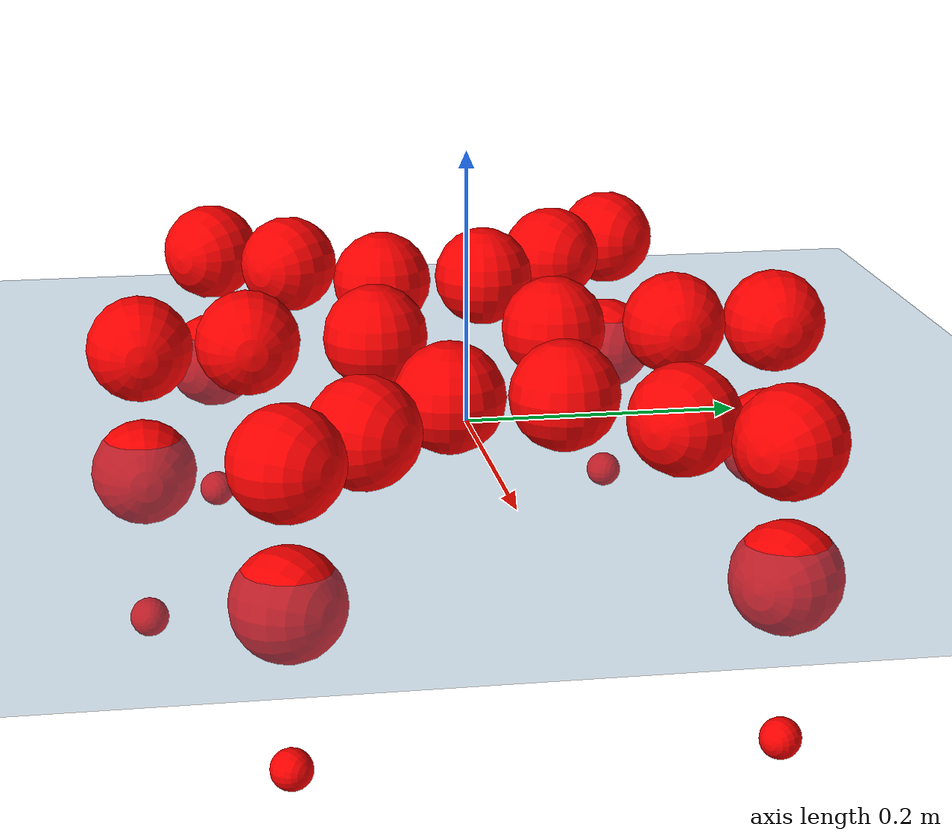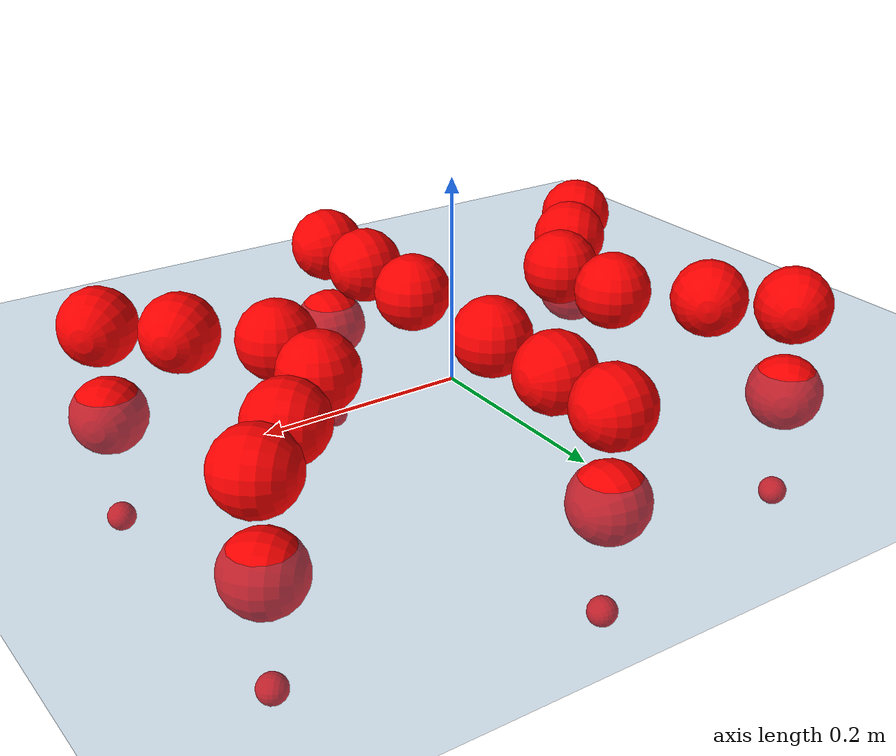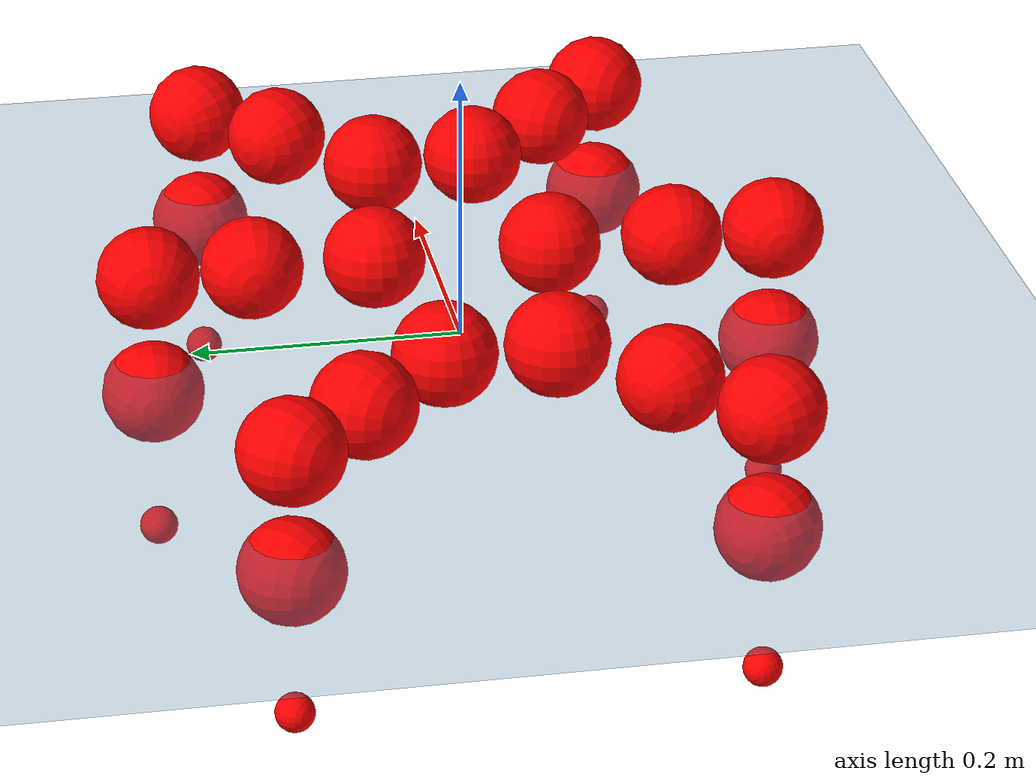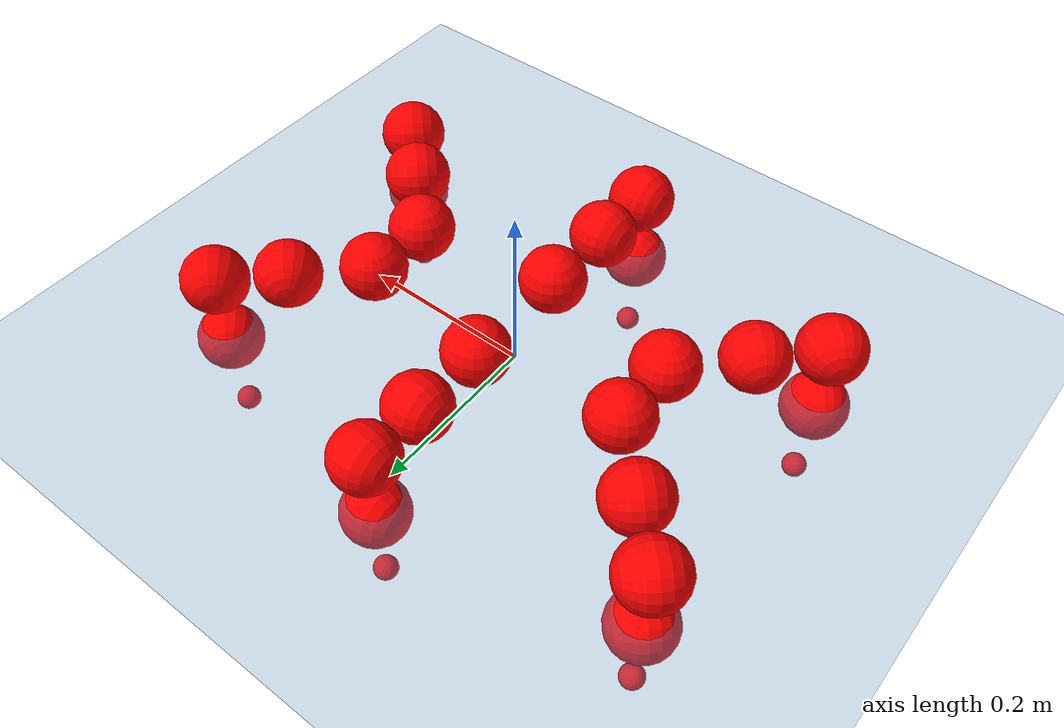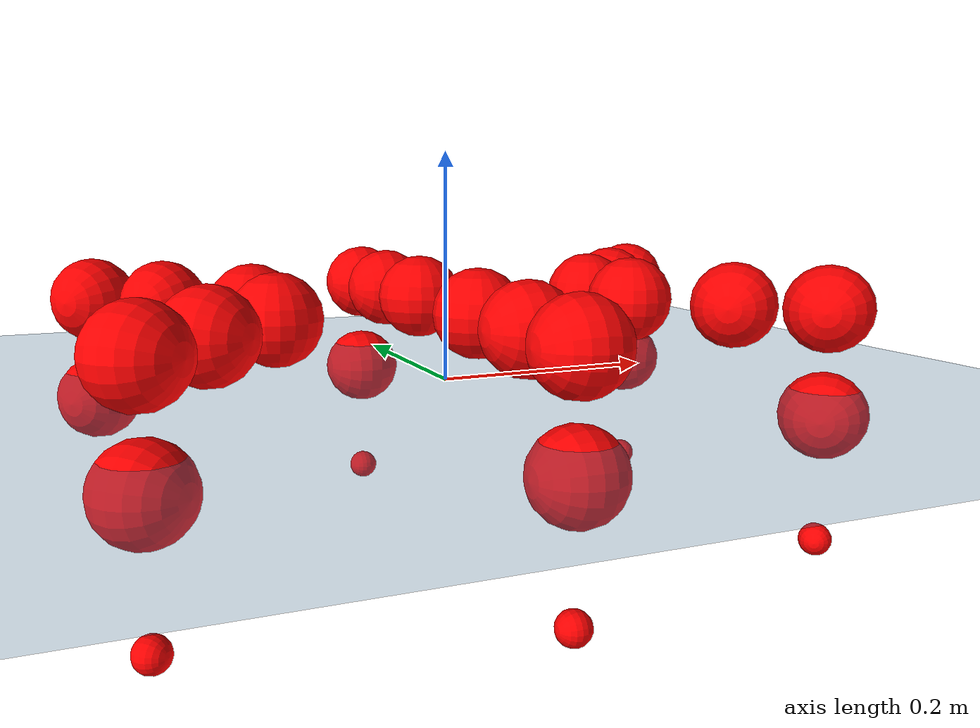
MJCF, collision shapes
<mujoco model="Golem">
  <compiler angle="radian" assetdir="assets" balanceinertia="true" inertiafromgeom="false"/>

  <option timestep="0.005" density="1.2" viscosity="2e-05"/>

  <size nkey="1"/>

  <visual>
    <quality shadowsize="8192"/>
    <map shadowclip="0.5"/>
  </visual>

  <default>
    <default class="/">
      <joint armature="0.01" damping="0.01" frictionloss="0.01"/>
      <geom contype="0" conaffinity="0" group="1" solref="-1000 -80"/>
      <site size="0.01 0.005 0.005" group="5"/>
      <general forcelimited="true" biastype="affine" gainprm="25" biasprm="0 -25 -0.5"/>
      <default class="visual">
        <geom type="mesh" group="2"/>
      </default>
      <default class="collision">
        <geom group="3"/>
      </default>
      <default class="foot">
        <geom size="0.01 0 0" condim="6" group="4" priority="1" solimp="0.015 1 0.01"/>
      </default>
      <default class="reward_collision_sphere">
        <geom group="5" rgba="1 0 0 1"/>
      </default>
    </default>
  </default>

  <asset>
    <texture type="skybox" colorspace="auto" name="//unnamed_texture_0" builtin="gradient" rgb1="0.95 0.95 0.95" rgb2="0.95 0.95 0.95" width="100" height="600"/>
    <texture type="2d" colorspace="auto" name="texplane" builtin="checker" rgb1="0.345 0.575 0.748" rgb2="0.345 0.575 0.748" markrgb="1 1 1" width="512" height="512"/>
    <material name="MatPlane" class="/" texture="texplane" texuniform="true" texrepeat="2 2" specular="0.9"/>
    <mesh name="body" class="/" file="body.stl" scale="0.001 0.001 0.001"/>
    <mesh name="coxa" class="/" file="coxa.stl" scale="0.001 0.001 0.001"/>
    <mesh name="femur" class="/" file="femur.stl" scale="0.001 0.001 0.001"/>
    <mesh name="tibia" class="/" file="tibia.stl" scale="0.001 0.001 0.001"/>
    <mesh name="tarsus" class="/" file="tarsus.stl" scale="0.001 0.001 0.001"/>
  </asset>

  <worldbody>
    <geom name="floor" class="/" size="100 100 0.125" type="plane" group="0" material="MatPlane"/>
    <light name="toplight_shadow" class="/" pos="0 0 5" dir="0.0990148 0.0990148 -0.990148" type="directional" ambient="0.04 0.04 0.04" diffuse="0.55 0.55 0.55" specular="0.12 0.12 0.12"/>
    <light name="toplight_fill" class="/" pos="0 0 5" dir="0.0990148 0.0990148 -0.990148" type="directional" castshadow="false" ambient="0.04 0.04 0.04" diffuse="0.3 0.3 0.3" specular="0.08 0.08 0.08"/>
    <body name="trunk" pos="0.000801381 -0.000893244 -0.000932086" quat="1 3.53508e-06 8.69704e-06 -1.13791e-05">
      <inertial pos="0.000583396 0.000193004 -0.0035896" quat="0.999999 0.00101307 0.000371895 0.000606365" mass="3.07502" diaginertia="0.012321 0.00201905 0.0137541"/>
      <joint name="//unnamed_joint_0" type="free"/>
      <geom name="//unnamed_geom_1" class="/" pos="0 0 0.0682922" quat="1 0 0 0" type="mesh" rgba="0.9 0.9 0.9 1" mesh="body"/>
      <site name="imu" class="/" pos="0.137709 0.00131734 0.106351" size="0.00946088"/>
      <camera name="track" class="/" pos="0 -1.45828 0" quat="0.707107 0.707107 0 0" mode="trackcom"/>
      <camera name="ego_camera" class="/" pos="0.135467 0 0.106707" quat="-0.5 -0.5 0.5 0.5"/>
      <body name="coxa_RR" pos="-0.184521 -0.0612499 0.0682256" quat="0.382677 0.000134735 -0.000334803 -0.923882">
        <inertial pos="-0.000290568 -0.00101418 0.00143658" quat="0.999996 0.00236248 0.000375327 -0.00172619" mass="0.168171" diaginertia="0.012463 0.00208866 0.0139869"/>
        <joint name="coxa_joint_RR" class="/" pos="0 0 0" axis="-0.00332171 -0.00459675 -0.999984" range="-3.13538 3.13995" armature="0.00944614" damping="0.00449472" frictionloss="0.00942664"/>
        <geom name="//unnamed_geom_2" class="/" type="mesh" rgba="0.2 0.2 0.2 1" mesh="coxa"/>
        <geom name="//unnamed_geom_3" class="reward_collision_sphere" size="0.0378435" pos="-0.0312617 0 0"/>
        <body name="femur_RR" pos="0.0615931 0.000974064 0.000211768" quat="0.500033 -0.499941 0.500173 0.499853">
          <inertial pos="0.000914673 0.000501966 5.65317e-05" quat="1 -0.000498532 -0.0003808 0.0003622" mass="0.169773" diaginertia="0.0123148 0.00206554 0.0141058"/>
          <joint name="femur_joint_RR" class="/" pos="0 0 0" axis="-0.000805132 -8.89228e-06 -1" range="-3.14369 3.15129" armature="0.00938235" damping="0.000418151" frictionloss="0.00945074"/>
          <geom name="//unnamed_geom_4" class="/" type="mesh" rgba="0.9 0.9 0.9 1" mesh="femur"/>
          <geom name="//unnamed_geom_5" class="reward_collision_sphere" size="0.0378435"/>
          <body name="tibia_RR" pos="0.000722611 -0.0801989 0.0016103" quat="6.78664e-05 1 -0.000152259 -0.000344345">
            <inertial pos="-0.000142059 -0.000186077 0.000288172" quat="1 -0.000408483 -0.000895903 -1.93752e-05" mass="0.170607" diaginertia="0.0124011 0.00208165 0.0141322"/>
            <joint name="tibia_joint_RR" class="/" pos="0 0 0" axis="-0.000349154 -0.000110001 1" range="-3.15558 3.12138" armature="0.00921456" damping="0.0013634" frictionloss="0.00944638"/>
            <geom name="//unnamed_geom_6" class="/" type="mesh" rgba="0.2 0.2 0.2 1" mesh="tibia"/>
            <geom name="//unnamed_geom_7" class="reward_collision_sphere" size="0.0378435"/>
            <body name="tarsus_RR" pos="0.0915155 0.000456751 -0.00014611" quat="1 -3.07439e-05 0.000114984 -0.000160727">
              <inertial pos="0.0640716 0.000612006 -0.000942158" quat="0.499752 0.500796 0.499451 0.5" mass="0.170015" diaginertia="0.0123103 0.00204006 0.0138403"/>
              <joint name="tarsus_joint_RR" class="/" pos="0 0 0" axis="0.00727754 0.00554809 0.999958" stiffness="0.00196772" range="-3.14103 3.12247" armature="0.00941439" damping="0.0430752" frictionloss="0.00988226"/>
              <geom name="//unnamed_geom_8" class="/" type="mesh" rgba="0.9 0.9 0.9 1" mesh="tarsus"/>
              <geom name="foot_1" class="foot" size="0.00924207" pos="0.11671 0 0" quat="0 -0.707107 0 0.707107"/>
              <geom name="//unnamed_geom_10" class="reward_collision_sphere" size="0.0378435"/>
              <geom name="//unnamed_geom_11" class="reward_collision_sphere" size="0.0141913" pos="0.112021 0 0"/>
              <site name="foot_1" class="foot" pos="0.11671 0 0" quat="0 -0.707107 0 0.707107" size="0.00946088"/>
            </body>
          </body>
        </body>
      </body>
      <body name="coxa_RM" pos="0.000147104 -0.0970806 0.0682407" quat="0.707222 8.60975e-05 0.000368579 -0.706991">
        <inertial pos="-0.000306935 5.85381e-05 0.00144094" quat="0.999991 -0.000362138 -0.00216421 0.00356404" mass="0.171146" diaginertia="0.0124386 0.00203789 0.0137195"/>
        <joint name="coxa_joint_RM" class="/" pos="0 0 0" axis="0.00186709 0.00320697 -0.999993" range="-3.12721 3.14786" armature="0.00932267" damping="0.00976312" frictionloss="0.00878649"/>
        <geom name="//unnamed_geom_12" class="/" type="mesh" rgba="0.2 0.2 0.2 1" mesh="coxa"/>
        <geom name="//unnamed_geom_13" class="reward_collision_sphere" size="0.0378435" pos="-0.0312617 0 0"/>
        <body name="femur_RM" pos="0.0605404 -0.000678322 -0.000510763" quat="0.499882 -0.500248 0.500012 0.499858">
          <inertial pos="0.000305898 0.000515435 -7.76218e-05" quat="0.999998 -0.00162047 0.000270569 0.00135386" mass="0.172318" diaginertia="0.0124449 0.00209213 0.0140576"/>
          <joint name="femur_joint_RM" class="/" pos="0 0 0" axis="0.00203166 0.00440974 -0.999988" range="-3.13932 3.14182" armature="0.00987382" damping="0.0084204" frictionloss="0.00949462"/>
          <geom name="//unnamed_geom_14" class="/" type="mesh" rgba="0.9 0.9 0.9 1" mesh="femur"/>
          <geom name="//unnamed_geom_15" class="reward_collision_sphere" size="0.0378435"/>
          <body name="tibia_RM" pos="0.000989543 -0.0769745 0.000358877" quat="-2.91783e-05 1 2.96304e-05 -0.00013738">
            <inertial pos="-0.000606695 -0.00112947 -0.000332261" quat="0.999999 0.000365951 -0.00165535 8.37689e-05" mass="0.169957" diaginertia="0.0123529 0.00210281 0.013834"/>
            <joint name="tibia_joint_RM" class="/" pos="0 0 0" axis="0.000157136 -0.000152632 1" range="-3.14666 3.1669" armature="0.009513" damping="0.0111169" frictionloss="0.00961843"/>
            <geom name="//unnamed_geom_16" class="/" type="mesh" rgba="0.2 0.2 0.2 1" mesh="tibia"/>
            <geom name="//unnamed_geom_17" class="reward_collision_sphere" size="0.0378435"/>
            <body name="tarsus_RM" pos="0.0917751 -0.000172687 -0.000176616" quat="1 -1.89571e-05 -2.31163e-05 -4.16429e-05">
              <inertial pos="0.0628039 0.00087082 -0.000100202" quat="0.500647 0.496117 0.500824 0.50239" mass="0.171106" diaginertia="0.0122376 0.00208175 0.013868"/>
              <joint name="tarsus_joint_RM" class="/" pos="0 0 0" axis="0.00065962 0.000571726 1" range="-3.15539 3.13772" armature="0.00908146" damping="0.0079542" frictionloss="0.00935997"/>
              <geom name="//unnamed_geom_18" class="/" type="mesh" rgba="0.9 0.9 0.9 1" mesh="tarsus"/>
              <geom name="foot_2" class="foot" size="0.00951996" pos="0.11671 0 0" quat="0 -0.707107 0 0.707107"/>
              <geom name="//unnamed_geom_20" class="reward_collision_sphere" size="0.0378435"/>
              <geom name="//unnamed_geom_21" class="reward_collision_sphere" size="0.0141913" pos="0.112021 0 0"/>
              <site name="foot_2" class="foot" pos="0.11671 0 0" quat="0 -0.707107 0 0.707107" size="0.00946088"/>
            </body>
          </body>
        </body>
      </body>
      <body name="coxa_RF" pos="0.185957 -0.0598961 0.0694748" quat="0.92383 8.9702e-05 -0.000201083 -0.382803">
        <inertial pos="0.000288096 -0.00102754 -0.000385711" quat="1 0.000454871 -0.000275895 -0.000118914" mass="0.170489" diaginertia="0.0123017 0.00206001 0.01404"/>
        <joint name="coxa_joint_RF" class="/" pos="0 0 0" axis="-0.00188124 -0.000119206 -0.999998" range="-3.14502 3.14296" armature="0.00947954" damping="0.0148034" frictionloss="0.00936691"/>
        <geom name="//unnamed_geom_22" class="/" type="mesh" rgba="0.2 0.2 0.2 1" mesh="coxa"/>
        <geom name="//unnamed_geom_23" class="reward_collision_sphere" size="0.0378435" pos="-0.0312617 0 0"/>
        <body name="femur_RF" pos="0.0611565 -0.00060032 -0.00103505" quat="0.500068 -0.499979 0.499922 0.500031">
          <inertial pos="-0.000547019 0.000546076 -0.000407197" quat="0.999993 0.00199226 -0.000449005 0.00320581" mass="0.171463" diaginertia="0.0122859 0.00210589 0.0140799"/>
          <joint name="femur_joint_RF" class="/" pos="0 0 0" axis="0.000406852 -0.000505566 -1" range="-3.15767 3.1342" armature="0.00940484" damping="0.00842196" frictionloss="0.00931588"/>
          <geom name="//unnamed_geom_24" class="/" type="mesh" rgba="0.9 0.9 0.9 1" mesh="femur"/>
          <geom name="//unnamed_geom_25" class="reward_collision_sphere" size="0.0378435"/>
          <body name="tibia_RF" pos="-0.000211914 -0.0784525 0.000845711" quat="-7.28114e-05 1 5.71072e-06 6.17304e-05">
            <inertial pos="-0.00107238 0.0006029 -0.000359565" quat="1 -0.000286348 8.04472e-05 -0.000145533" mass="0.171395" diaginertia="0.0124881 0.00204989 0.0138625"/>
            <joint name="tibia_joint_RF" class="/" pos="0 0 0" axis="-0.00257272 -0.00184263 0.999995" stiffness="0.00045438" range="-3.1425 3.11824" armature="0.00967031" damping="0.00872213" frictionloss="0.00942765"/>
            <geom name="//unnamed_geom_26" class="/" type="mesh" rgba="0.2 0.2 0.2 1" mesh="tibia"/>
            <geom name="//unnamed_geom_27" class="reward_collision_sphere" size="0.0378435"/>
            <body name="tarsus_RF" pos="0.0920386 0.000389569 0.000439627" quat="1 -0.000347421 0.000190629 -8.76063e-05">
              <inertial pos="0.0620151 0.000595636 8.54285e-06" quat="0.499245 0.499234 0.500952 0.500566" mass="0.169337" diaginertia="0.0123703 0.00204999 0.0136834"/>
              <joint name="tarsus_joint_RF" class="/" pos="0 0 0" axis="0.000185487 -0.000398874 1" range="-3.1269 3.13342" armature="0.00903446" damping="0.000163401" frictionloss="0.00989598"/>
              <geom name="//unnamed_geom_28" class="/" type="mesh" rgba="0.9 0.9 0.9 1" mesh="tarsus"/>
              <geom name="foot_3" class="foot" size="0.00928863" pos="0.11671 0 0" quat="0 -0.707107 0 0.707107"/>
              <geom name="//unnamed_geom_30" class="reward_collision_sphere" size="0.0378435"/>
              <geom name="//unnamed_geom_31" class="reward_collision_sphere" size="0.0141913" pos="0.112021 0 0"/>
              <site name="foot_3" class="foot" pos="0.11671 0 0" quat="0 -0.707107 0 0.707107" size="0.00946088"/>
            </body>
          </body>
        </body>
      </body>
      <body name="coxa_LR" pos="-0.185779 0.0631289 0.0684751" quat="0.382643 -4.96822e-05 -3.49751e-05 0.923896">
        <inertial pos="-0.000434469 -0.00109902 -0.000711289" quat="0.999988 -0.000555881 -0.00302117 -0.0038432" mass="0.169673" diaginertia="0.01217 0.00208219 0.0137013"/>
        <joint name="coxa_joint_LR" class="/" pos="0 0 0" axis="0.00190491 -0.00627257 -0.999979" range="-3.14001 3.15665" armature="0.00988822" damping="0.00830649" frictionloss="0.00955007"/>
        <geom name="//unnamed_geom_32" class="/" type="mesh" rgba="0.2 0.2 0.2 1" mesh="coxa"/>
        <geom name="//unnamed_geom_33" class="reward_collision_sphere" size="0.0378435" pos="-0.0312617 0 0"/>
        <body name="femur_LR" pos="0.0623027 -0.00130294 -0.000588494" quat="0.500027 -0.499994 0.499985 0.499994">
          <inertial pos="0.000423615 -9.77403e-05 4.81042e-05" quat="0.999989 0.00300056 0.0027249 0.00226503" mass="0.169172" diaginertia="0.0123053 0.00205473 0.0138372"/>
          <joint name="femur_joint_LR" class="/" pos="0 0 0" axis="0.00266468 0.000855189 0.999996" range="-3.14133 3.1424" armature="0.00968469" damping="0.00666358" frictionloss="0.00891421"/>
          <geom name="//unnamed_geom_34" class="/" type="mesh" rgba="0.9 0.9 0.9 1" mesh="femur"/>
          <geom name="//unnamed_geom_35" class="reward_collision_sphere" size="0.0378435"/>
          <body name="tibia_LR" pos="0.000637311 -0.0797731 -0.00142688" quat="0.000213067 1 8.93978e-05 0.00013859">
            <inertial pos="-0.000303909 -0.00012499 0.000115998" quat="0.999997 1.73002e-05 0.00192025 -0.00162669" mass="0.166851" diaginertia="0.0121016 0.00203789 0.013627"/>
            <joint name="tibia_joint_LR" class="/" pos="0 0 0" axis="0.00555715 0.0029812 -0.99998" range="-3.12081 3.14318" armature="0.00949533" damping="0.0052331" frictionloss="0.00940008"/>
            <geom name="//unnamed_geom_36" class="/" type="mesh" rgba="0.2 0.2 0.2 1" mesh="tibia"/>
            <geom name="//unnamed_geom_37" class="reward_collision_sphere" size="0.0378435"/>
            <body name="tarsus_LR" pos="0.0919233 0.000765688 0.00130572" quat="1 0.000155892 -0.00038803 8.7746e-06">
              <inertial pos="0.0642004 0.00057854 -0.000990097" quat="0.500147 0.500267 0.50014 0.499446" mass="0.170553" diaginertia="0.0122646 0.00206806 0.0138158"/>
              <joint name="tarsus_joint_LR" class="/" pos="0 0 0" axis="0.00061841 0.00136159 -0.999999" range="-3.13946 3.13774" armature="0.00950059" damping="0.00255934" frictionloss="0.00926305"/>
              <geom name="//unnamed_geom_38" class="/" type="mesh" rgba="0.9 0.9 0.9 1" mesh="tarsus"/>
              <geom name="foot_4" class="foot" size="0.00896763" pos="0.11671 0 0" quat="0.707107 0 -0.707107 0"/>
              <geom name="//unnamed_geom_40" class="reward_collision_sphere" size="0.0378435"/>
              <geom name="//unnamed_geom_41" class="reward_collision_sphere" size="0.0141913" pos="0.112021 0 0"/>
              <site name="foot_4" class="foot" pos="0.11671 0 0" quat="0.707107 0 -0.707107 0" size="0.00946088"/>
            </body>
          </body>
        </body>
      </body>
      <body name="coxa_LM" pos="-0.0010837 0.0960159 0.0685528" quat="0.707085 -0.000293179 7.43649e-05 0.707128">
        <inertial pos="0.000281148 0.000485114 0.000785864" quat="0.999992 -0.00168172 0.00197731 0.00297669" mass="0.170298" diaginertia="0.0125006 0.00208183 0.0138957"/>
        <joint name="coxa_joint_LM" class="/" pos="0 0 0" axis="-0.00117416 0.000493692 -0.999999" range="-3.13848 3.13487" armature="0.00904793" damping="0.00864144" frictionloss="0.00935823"/>
        <geom name="//unnamed_geom_42" class="/" type="mesh" rgba="0.2 0.2 0.2 1" mesh="coxa"/>
        <geom name="//unnamed_geom_43" class="reward_collision_sphere" size="0.0378435" pos="-0.0312617 0 0"/>
        <body name="femur_LM" pos="0.0590767 0.00121677 -0.000679648" quat="0.499967 -0.499706 0.499972 0.500356">
          <inertial pos="-0.00100879 -0.000144619 0.00123992" quat="0.999993 0.00294389 -0.0020416 -0.00142744" mass="0.169538" diaginertia="0.0121567 0.00202699 0.0137531"/>
          <joint name="femur_joint_LM" class="/" pos="0 0 0" axis="-0.000284256 0.000468615 1" range="-3.13767 3.14266" armature="0.00906431" damping="0.00209601" frictionloss="0.00944384"/>
          <geom name="//unnamed_geom_44" class="/" type="mesh" rgba="0.9 0.9 0.9 1" mesh="femur"/>
          <geom name="//unnamed_geom_45" class="reward_collision_sphere" size="0.0378435"/>
          <body name="tibia_LM" pos="0.00126704 -0.0758975 0.000630023" quat="0.000447296 1 0.000378483 0.00034132">
            <inertial pos="0.000320784 -0.00190468 -0.00038005" quat="0.999993 0.000623447 0.00191192 -0.0031864" mass="0.170512" diaginertia="0.0122436 0.00207174 0.0137878"/>
            <joint name="tibia_joint_LM" class="/" pos="0 0 0" axis="1.23256e-05 -0.00166606 -0.999999" range="-3.1355 3.13657" armature="0.00964765" damping="0" frictionloss="0.0099021"/>
            <geom name="//unnamed_geom_46" class="/" type="mesh" rgba="0.2 0.2 0.2 1" mesh="tibia"/>
            <geom name="//unnamed_geom_47" class="reward_collision_sphere" size="0.0378435"/>
            <body name="tarsus_LM" pos="0.0915491 -0.000484478 -0.0016264" quat="1 0.00031614 -0.000203273 -0.000535094">
              <inertial pos="0.0635475 0.000402735 0.000824045" quat="0.499998 0.499997 0.50001 0.499995" mass="0.165394" diaginertia="0.0122002 0.00202 0.0135479"/>
              <joint name="tarsus_joint_LM" class="/" pos="0 0 0" axis="0.00174074 0.000209919 -0.999998" range="-3.11514 3.1432" armature="0.00963998" damping="0" frictionloss="0.00914758"/>
              <geom name="//unnamed_geom_48" class="/" type="mesh" rgba="0.9 0.9 0.9 1" mesh="tarsus"/>
              <geom name="foot_5" class="foot" size="0.00928136" pos="0.11671 0 0" quat="0.707107 0 -0.707107 0"/>
              <geom name="//unnamed_geom_50" class="reward_collision_sphere" size="0.0378435"/>
              <geom name="//unnamed_geom_51" class="reward_collision_sphere" size="0.0141913" pos="0.112021 0 0"/>
              <site name="foot_5" class="foot" pos="0.11671 0 0" quat="0.707107 0 -0.707107 0" size="0.00946088"/>
            </body>
          </body>
        </body>
      </body>
      <body name="coxa_LF" pos="0.186678 0.0618745 0.0675161" quat="0.923867 -1.15816e-05 6.93162e-06 0.382713">
        <inertial pos="0.000283665 -0.00013569 0.000934658" quat="0.999995 0.001971 -0.00170529 0.00194361" mass="0.169339" diaginertia="0.0121072 0.00204276 0.0136008"/>
        <joint name="coxa_joint_LF" class="/" pos="0 0 0" axis="-0.00326439 -0.0012889 -0.999994" range="-3.12167 3.16109" armature="0.00960933" damping="0.000548247" frictionloss="0.00979953"/>
        <geom name="//unnamed_geom_52" class="/" type="mesh" rgba="0.2 0.2 0.2 1" mesh="coxa"/>
        <geom name="//unnamed_geom_53" class="reward_collision_sphere" size="0.0378435" pos="-0.0312617 0 0"/>
        <body name="femur_LF" pos="0.061633 -0.000221073 -0.000191047" quat="0.500309 -0.499975 0.499789 0.499928">
          <inertial pos="0.00104746 -0.00030786 -0.000354584" quat="1 0.000365946 -0.000296896 0.000360027" mass="0.168321" diaginertia="0.0123027 0.00205777 0.013975"/>
          <joint name="femur_joint_LF" class="/" pos="0 0 0" axis="-0.00338326 1.82054e-05 0.999994" range="-3.15626 3.14837" armature="0.00951774" damping="0" frictionloss="0.00936118"/>
          <geom name="//unnamed_geom_54" class="/" type="mesh" rgba="0.9 0.9 0.9 1" mesh="femur"/>
          <geom name="//unnamed_geom_55" class="reward_collision_sphere" size="0.0378435"/>
          <body name="tibia_LF" pos="0.000774789 -0.0784763 -0.000194306" quat="-0.000120858 1 -1.7005e-05 3.73807e-05">
            <inertial pos="-4.86609e-05 -0.000337877 -0.000775651" quat="1 -1.19058e-05 -1.77213e-06 4.46522e-05" mass="0.17095" diaginertia="0.0122755 0.00205588 0.0137957"/>
            <joint name="tibia_joint_LF" class="/" pos="0 0 0" axis="0.0015524 0.000100633 -0.999999" range="-3.13814 3.13698" armature="0.00990313" damping="0.00291417" frictionloss="0.00902593"/>
            <geom name="//unnamed_geom_56" class="/" type="mesh" rgba="0.2 0.2 0.2 1" mesh="tibia"/>
            <geom name="//unnamed_geom_57" class="reward_collision_sphere" size="0.0378435"/>
            <body name="tarsus_LF" pos="0.0911671 -6.48905e-05 -0.000452068" quat="1 -8.56109e-05 0.000337929 7.38465e-05">
              <inertial pos="0.0631295 9.30288e-05 0.00100456" quat="0.500583 0.501427 0.497824 0.500159" mass="0.167432" diaginertia="0.0122705 0.00205622 0.0136794"/>
              <joint name="tarsus_joint_LF" class="/" pos="0 0 0" axis="0.00240752 -0.00561214 -0.999981" stiffness="0.0307836" range="-3.13147 3.11931" armature="0.00949152" damping="0.0256176" frictionloss="0.00952768"/>
              <geom name="//unnamed_geom_58" class="/" type="mesh" rgba="0.9 0.9 0.9 1" mesh="tarsus"/>
              <geom name="foot_6" class="foot" size="0.00941985" pos="0.11671 0 0" quat="0.707107 0 -0.707107 0"/>
              <geom name="//unnamed_geom_60" class="reward_collision_sphere" size="0.0378435"/>
              <geom name="//unnamed_geom_61" class="reward_collision_sphere" size="0.0141913" pos="0.112021 0 0"/>
              <site name="foot_6" class="foot" pos="0.11671 0 0" quat="0.707107 0 -0.707107 0" size="0.00946088"/>
            </body>
          </body>
        </body>
      </body>
    </body>
  </worldbody>

  <contact>
    <pair class="/" geom1="floor" geom2="foot_1" name="//unnamed_contact_0"/>
    <pair class="/" geom1="floor" geom2="foot_2" name="//unnamed_contact_1"/>
    <pair class="/" geom1="floor" geom2="foot_3" name="//unnamed_contact_2"/>
    <pair class="/" geom1="floor" geom2="foot_4" name="//unnamed_contact_3"/>
    <pair class="/" geom1="floor" geom2="foot_5" name="//unnamed_contact_4"/>
    <pair class="/" geom1="floor" geom2="foot_6" name="//unnamed_contact_5"/>
  </contact>

  <actuator>
    <general name="coxa_joint_RR" class="/" joint="coxa_joint_RR" forcerange="-6.95542 6.95542" gainprm="22.8223" biasprm="0 -22.8223 -0.488187"/>
    <general name="femur_joint_RR" class="/" joint="femur_joint_RR" forcerange="-6.88237 6.88237" gainprm="22.8223" biasprm="0 -22.8223 -0.488187"/>
    <general name="tibia_joint_RR" class="/" joint="tibia_joint_RR" forcerange="-6.95079 6.95079" gainprm="22.8223" biasprm="0 -22.8223 -0.488187"/>
    <general name="tarsus_joint_RR" class="/" joint="tarsus_joint_RR" forcerange="-6.80891 6.80891" gainprm="22.8223" biasprm="0 -22.8223 -0.488187"/>
    <general name="coxa_joint_RM" class="/" joint="coxa_joint_RM" forcerange="-6.65357 6.65357" gainprm="22.8223" biasprm="0 -22.8223 -0.488187"/>
    <general name="femur_joint_RM" class="/" joint="femur_joint_RM" forcerange="-6.7894 6.7894" gainprm="22.8223" biasprm="0 -22.8223 -0.488187"/>
    <general name="tibia_joint_RM" class="/" joint="tibia_joint_RM" forcerange="-7.12892 7.12892" gainprm="22.8223" biasprm="0 -22.8223 -0.488187"/>
    <general name="tarsus_joint_RM" class="/" joint="tarsus_joint_RM" forcerange="-6.9291 6.9291" gainprm="22.8223" biasprm="0 -22.8223 -0.488187"/>
    <general name="coxa_joint_RF" class="/" joint="coxa_joint_RF" forcerange="-6.73612 6.73612" gainprm="22.8223" biasprm="0 -22.8223 -0.488187"/>
    <general name="femur_joint_RF" class="/" joint="femur_joint_RF" forcerange="-7.1501 7.1501" gainprm="22.8223" biasprm="0 -22.8223 -0.488187"/>
    <general name="tibia_joint_RF" class="/" joint="tibia_joint_RF" forcerange="-6.60415 6.60415" gainprm="22.8223" biasprm="0 -22.8223 -0.488187"/>
    <general name="tarsus_joint_RF" class="/" joint="tarsus_joint_RF" forcerange="-6.6662 6.6662" gainprm="22.8223" biasprm="0 -22.8223 -0.488187"/>
    <general name="coxa_joint_LR" class="/" joint="coxa_joint_LR" forcerange="-6.92224 6.92224" gainprm="22.8223" biasprm="0 -22.8223 -0.488187"/>
    <general name="femur_joint_LR" class="/" joint="femur_joint_LR" forcerange="-6.82797 6.82797" gainprm="22.8223" biasprm="0 -22.8223 -0.488187"/>
    <general name="tibia_joint_LR" class="/" joint="tibia_joint_LR" forcerange="-6.99151 6.99151" gainprm="22.8223" biasprm="0 -22.8223 -0.488187"/>
    <general name="tarsus_joint_LR" class="/" joint="tarsus_joint_LR" forcerange="-6.79654 6.79654" gainprm="22.8223" biasprm="0 -22.8223 -0.488187"/>
    <general name="coxa_joint_LM" class="/" joint="coxa_joint_LM" forcerange="-6.89189 6.89189" gainprm="22.8223" biasprm="0 -22.8223 -0.488187"/>
    <general name="femur_joint_LM" class="/" joint="femur_joint_LM" forcerange="-6.92641 6.92641" gainprm="22.8223" biasprm="0 -22.8223 -0.488187"/>
    <general name="tibia_joint_LM" class="/" joint="tibia_joint_LM" forcerange="-6.90735 6.90735" gainprm="22.8223" biasprm="0 -22.8223 -0.488187"/>
    <general name="tarsus_joint_LM" class="/" joint="tarsus_joint_LM" forcerange="-6.82628 6.82628" gainprm="22.8223" biasprm="0 -22.8223 -0.488187"/>
    <general name="coxa_joint_LF" class="/" joint="coxa_joint_LF" forcerange="-6.57439 6.57439" gainprm="22.8223" biasprm="0 -22.8223 -0.488187"/>
    <general name="femur_joint_LF" class="/" joint="femur_joint_LF" forcerange="-6.89986 6.89986" gainprm="22.8223" biasprm="0 -22.8223 -0.488187"/>
    <general name="tibia_joint_LF" class="/" joint="tibia_joint_LF" forcerange="-7.00334 7.00334" gainprm="22.8223" biasprm="0 -22.8223 -0.488187"/>
    <general name="tarsus_joint_LF" class="/" joint="tarsus_joint_LF" forcerange="-7.14652 7.14652" gainprm="22.8223" biasprm="0 -22.8223 -0.488187"/>
  </actuator>

  <sensor>
    <gyro site="imu" name="imu_angular_velocity"/>
    <velocimeter site="imu" name="imu_linear_velocity"/>
    <framelinvel objtype="site" objname="foot_1" name="foot_1_global_linear_velocity"/>
    <framelinvel objtype="site" objname="foot_2" name="foot_2_global_linear_velocity"/>
    <framelinvel objtype="site" objname="foot_3" name="foot_3_global_linear_velocity"/>
    <framelinvel objtype="site" objname="foot_4" name="foot_4_global_linear_velocity"/>
    <framelinvel objtype="site" objname="foot_5" name="foot_5_global_linear_velocity"/>
    <framelinvel objtype="site" objname="foot_6" name="foot_6_global_linear_velocity"/>
  </sensor>

  <keyframe>
    <key name="home" qpos="0 0 0.1457 1 0 0 0 0 0 0 0 0 0 0 0 0 0 0 0 0 0 0 0 0 0 0 0 0 0 0 0"/>
  </keyframe>
</mujoco>
